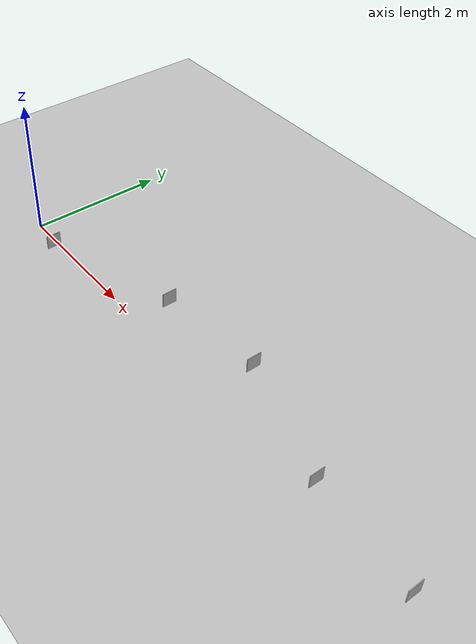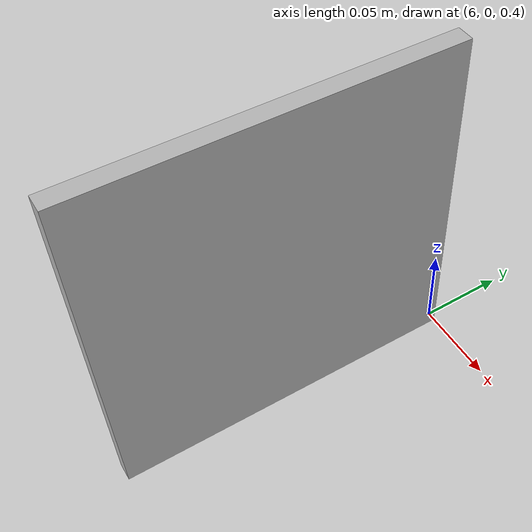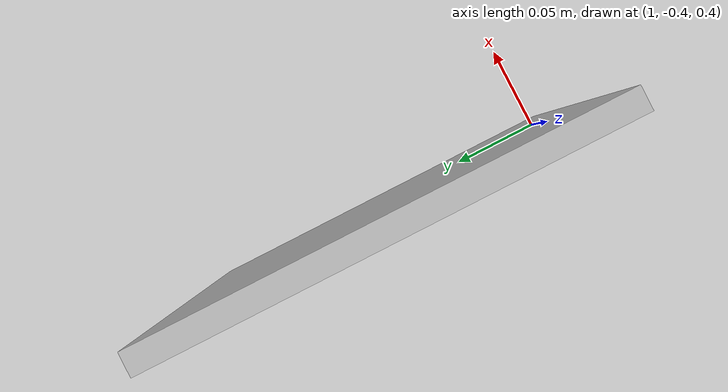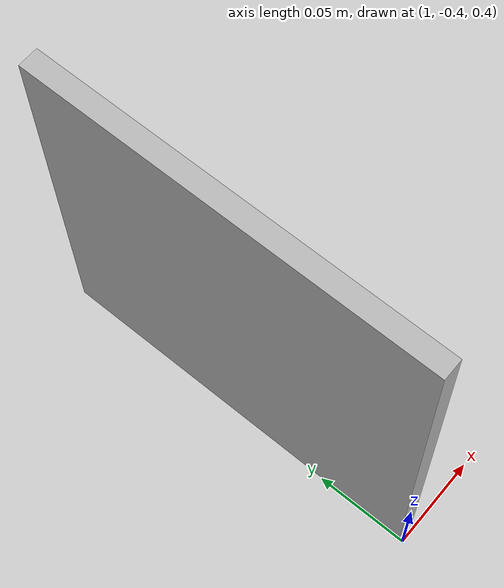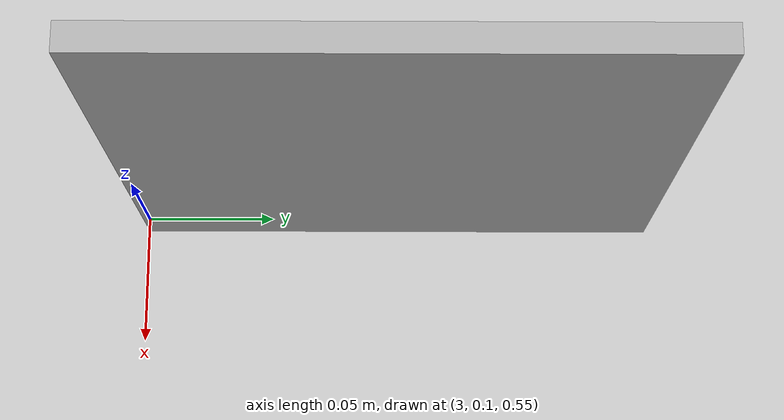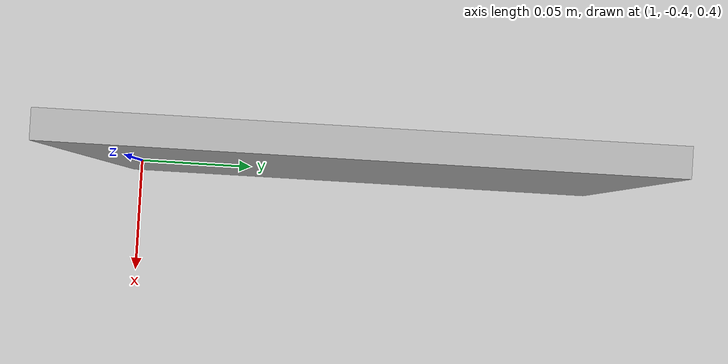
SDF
<?xml version="1.0" ?>
<sdf version="1.4">
<world name="aisle">

<gui>
  <camera name="camera">
    <pose>3 -2 3.5 0.0 .85 2.4</pose>
    <view_controller>orbit</view_controller>
  </camera>
</gui>
<include><uri>model://sun</uri></include>
<include><uri>model://ground_plane</uri></include>

  <model name="bin_0_tag">
    <static>true</static>
    <pose>1 -0.3 0.52 0 0 1.57</pose>
    <link name="link">
      <visual name="visual">
        <geometry><box><size>0.2 0.01 0.2</size></box></geometry>
        <material>
          <script>
            <uri>model://bin/tags</uri>
            <name>product_0</name>
          </script>
        </material>
      </visual>
    </link>
  </model>

  <model name="bin_1_tag">
    <static>true</static>
    <pose>3.0 0.2 0.65 0 0 1.57</pose>
    <link name="link">
      <visual name="visual">
        <geometry><box><size>0.2 0.01 0.2</size></box></geometry>
        <material>
          <script>
            <uri>model://bin/tags</uri>
            <name>product_0</name>
          </script>
        </material>
      </visual>
    </link>
  </model>

  <model name="bin_2_tag">
    <static>true</static>
    <pose>4.5 0.3 0.7 0 0 1.57</pose>
    <link name="link">
      <visual name="visual">
        <geometry><box><size>0.2 0.01 0.2</size></box></geometry>
        <material>
          <script>
            <uri>model://bin/tags</uri>
            <name>product_0</name>
          </script>
        </material>
      </visual>
    </link>
  </model>

  <model name="bin_3_tag">
    <static>true</static>
    <pose>6.0 -0.1 0.5 0 0 1.57</pose>
    <link name="link">
      <visual name="visual">
        <geometry><box><size>0.2 0.01 0.2</size></box></geometry>
        <material>
          <script>
            <uri>model://bin/tags</uri>
            <name>product_0</name>
          </script>
        </material>
      </visual>
    </link>
  </model>

  <model name="bin_4_tag">
    <static>true</static>
    <pose>7.5 -0.3 0.6 0 0 1.57</pose>
    <link name="link">
      <visual name="visual">
        <geometry><box><size>0.2 0.01 0.2</size></box></geometry>
        <material>
          <script>
            <uri>model://bin/tags</uri>
            <name>product_0</name>
          </script>
        </material>
      </visual>
    </link>
  </model>

</world>
</sdf>
